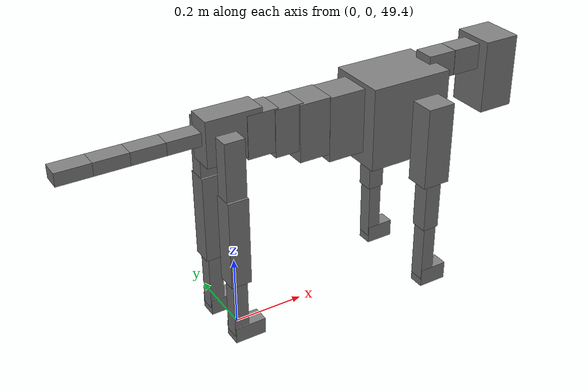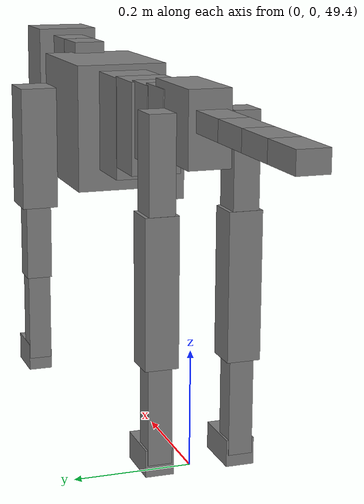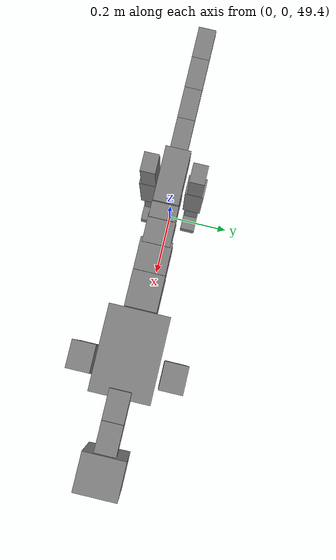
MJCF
<mujoco model="dog">

    <default>
        <joint armature="0.02" stiffness="1" damping="0.2" limited="true"/>
        <geom condim="3" friction="1 0.05 0.05" margin="0.01"/>
        <motor ctrllimited="true" ctrlrange="-1.0 1.0" forcelimited="true" gear="50"/>
    </default>

    <compiler inertiafromgeom="true" angle="radian"/>

    <option timestep="0.016" iterations="50" tolerance="1e-10" solver="Newton" jacobian="dense" cone="pyramidal"/>

    <size nconmax="20000" njmax="60000" nstack="5000000"/>
    <visual>
        <map force="0.1" zfar="30"/>
        <rgba haze="0.15 0.25 0.35 1"/>
        <quality shadowsize="2048"/>
        <global offwidth="800" offheight="800"/>
    </visual>

    <asset>
        <texture type="skybox" builtin="gradient" rgb1="0.3 0.5 0.7" rgb2="0 0 0" width="512" height="512"/>
        <texture name="texplane" type="2d" builtin="checker" rgb1=".2 .3 .4" rgb2=".1 0.15 0.2" width="512" height="512"
                 mark="cross" markrgb=".8 .8 .8"/>
        <texture name="texgeom" type="cube" builtin="flat" mark="cross" width="127" height="1278" rgb1="0.8 0.6 0.4"
                 rgb2="0.8 0.6 0.4" markrgb="1 1 1" random="0.01"/>

        <material name="matplane" reflectance="0.3" texture="texplane" texrepeat="1 1" texuniform="true"/>
        <material name="matgeom" texture="texgeom" texuniform="true" rgba="0.8 0.6 .4 1"/>
    </asset>

    <worldbody>
        <geom name="floor" pos="0 0 0" size="0 0 .25" type="plane" material="matplane" condim="3"/>

        <light directional="false" diffuse=".2 .2 .2" specular="0 0 0" pos="0 0 5" dir="0 0 -1" castshadow="false"/>
        <light mode="targetbodycom" target="torso" directional="false" diffuse=".8 .8 .8" specular="0.3 0.3 0.3"
               pos="0 0 4.0" dir="0 0 -1"/>

        <body name="root" pos="0 0 50">
            <freejoint name="root_1"/>
            <geom type="box" pos="0 0 -0.02" size="0.0774  0.0358  0.063" density="2030"/>

            <body name="spine1" pos="0.054 0 0">
                <joint name="spine1_y" axis="0 1 0" range="0 0.7" limited="true"/>
                <geom type="box" pos="0.02375 0 -0.03" size="0.04375  0.0375  0.05985" density="2030"/>

                <body name="spine2" pos="0.0612 0 0">
                    <joint name="spine2_y" axis="0 1 0" range="-0.15 0.15" limited="true"/>
                    <geom type="box" pos="0.03555  0  -0.04" size="0.04055  0.039  0.06615" density="2030"/>

                    <body name="spine3" pos="0.0730 0 0">
                        <joint name="spine3_y" axis="0 1 0" range="-0.15 0.15" limited="true"/>
                        <geom type="box" pos="0.03555  0  -0.057" size="0.04555  0.0445  0.081" density="2030"/>

                        <body name="spine4" pos="0.0780 0 0">
                            <joint name="spine4_y" axis="0 1 0" range="-0.15 0.15" limited="true"/>
                            <geom type="box" pos="0.05265  0  -0.07" size="0.05265  0.045  0.09135" density="2030"/>

                            <body name="torso" pos="0.1082 0 0">
                                <joint name="torso_y" axis="0 1 0" range="-0.15 0.15" limited="true"/>
                                <geom type="box" pos="0.11925  0  -0.085" size="0.11925  0.085  0.11745"
                                      density="2030"/>

                                <body name="neck1" pos="0.2160  0   0.0180">
                                    <joint name="neck1_y" axis="0 1 0" range="-1.2  -1" limited="true"/>
                                    <geom type="box" pos="0.0423  0  0" size="0.0423  0.03  0.036" density="2325"/>

                                    <body name="neck2" pos="0.0853  0  0">
                                        <joint name="neck2_y" axis="0 1 0" range="0.1  0" limited="true"/>
                                        <geom type="box" pos="0.0423  0  0" size="0.0423  0.03  0.036" density="2325"/>

                                        <body name="head" pos="0.0853  0  0">
                                            <joint name="head_y" axis="0 1 0" range="-0.3  -0.2" limited="true"/>
                                            <geom type="box" pos="0.0531  0  -0.055" size="0.0531  0.06  0.1044"
                                                  density="4030"/>

                                        </body>
                                    </body>
                                </body>

                                <body name="front_shoulder" pos="0.156  0   -0.0480">
                                    <joint name="front_shoulder_y" axis="0 1 0" range="-1 1.5" limited="true"/>
                                    <geom type="box" pos="0 0.13 -0.0896" size="0.0401  0.0343  0.1162" density="1158"/>
                                    <geom type="box" pos="0 -0.13 -0.0896" size="0.0401  0.0343  0.1162"
                                          density="1158"/>

                                    <body name="front_elbow" pos="0  0  -0.1791">
                                        <joint name="front_elbow_y" axis="0 1 0" range="-2 0" limited="true"/>
                                        <geom type="box" pos="0 0.13 -0.0851" size="0.0238  0.0243  0.0851"
                                              density="1081"/>
                                        <geom type="box" pos="0 -0.13 -0.0851" size="0.0238  0.0243  0.0851"
                                              density="1081"/>

                                        <body name="front_wrist" pos="0  0  -0.1702">
                                            <joint name="front_wrist_y" axis="0 1 0" range="-0.2 0" limited="true"/>
                                            <geom type="box" pos="0 0.13 -0.0767" size="0.0195  0.0217  0.0898"
                                                  density="1664"/>
                                            <geom type="box" pos="0 -0.13 -0.0767" size="0.0195  0.0217  0.0898"
                                                  density="1664"/>

                                            <body name="front_finger_end" pos="0  0  -0.1533">
                                                <joint name="front_finger_y" axis="0 1 0" range="-0.4 1"
                                                       limited="true"/>
                                                <geom type="box" pos="0.0223  0.13  -0.0110"
                                                      size="0.0408  0.0223  0.0260" density="1515"/>
                                                <geom type="box" pos="0.0223  -0.13  -0.0110"
                                                      size="0.0408  0.0223  0.0260" density="1515"/>

                                            </body>

                                        </body>
                                    </body>
                                </body>

                            </body>
                        </body>
                    </body>
                </body>
            </body>

            <body name="back_hip" pos="-0.03 0 -0.018">
                <joint name="back_hip_y" axis="0 1 0" range="-1.5 0.3" limited="true"/>
                <geom type="box" pos="0 0.07 -0.0770" size="0.0281  0.0220  0.0998" density="1154"/>
                <geom type="box" pos="0 -0.07 -0.0770" size="0.0281  0.0220  0.0998" density="1154"/>

                <body name="back_knee" pos="0  0  -0.1540">
                    <joint name="back_knee_y" axis="0 1 0" range="0 2.8" limited="true"/>
                    <geom type="box" pos="0 0.07 -0.1094" size="0.0287  0.0283  0.1249" density="1227"/>
                    <geom type="box" pos="0 -0.07 -0.1094" size="0.0287  0.0283  0.1249" density="1227"/>

                    <body name="back_ankle" pos="0  0  -0.2187">
                        <joint name="back_ankle_y" axis="0 1 0" range="-2.2 0" limited="true"/>
                        <geom type="box" pos="0 0.07 -0.0841" size="0.0205  0.0205  0.0953" density="1284"/>
                        <geom type="box" pos="0 -0.07 -0.0841" size="0.0205  0.0205  0.0953" density="1284"/>

                        <body name="back_toe_end" pos="0  0  -0.1681">
                            <joint name="back_toe_y" axis="0 1 0" range="-0.4 1" limited="true"/>
                            <geom type="box" pos="0.0239  0.07  -0.0080" size="0.0439  0.0239  0.0230" density="1515"/>
                            <geom type="box" pos="0.0239  -0.07  -0.0080" size="0.0439  0.0239  0.0230" density="1515"/>

                        </body>
                    </body>
                </body>
            </body>

            <body name="tail1" pos="-0.074 0 -0.006">
                <joint name="tail1_y" axis="0 1 0" range="-0.2 0.2" limited="true"/>
                <geom type="box" pos="-0.0536  0  0" size="0.045  0.025  0.0175" density="1587"/>

                <body name="tail2" pos="-0.09 0 0">
                    <joint name="tail2_y" axis="0 1 0" range="-0.2 0.2" limited="true"/>
                    <geom type="box" pos="-0.0536  0  0" size="0.045  0.025  0.0175" density="1587"/>

                    <body name="tail3" pos="-0.09 0 0">
                        <joint name="tail3_y" axis="0 1 0" range="-0.2 0.2" limited="true"/>
                        <geom type="box" pos="-0.0536  0  0" size="0.045  0.025  0.0175" density="1587"/>

                        <body name="tail4" pos="-0.09 0 0">
                            <joint name="tail4_y" axis="0 1 0" range="-0.2 0.2" limited="true"/>
                            <geom type="box" pos="-0.0536  0  0" size="0.045  0.025  0.0175" density="1587"/>

                        </body>
                    </body>
                </body>
            </body>
        </body>
    </worldbody>

    <actuator>
        <motor joint="spine1_y" forcerange="-150 150     "/>
        <motor joint="spine2_y" forcerange="-150 150     "/>
        <motor joint="spine3_y" forcerange="-150 150     "/>
        <motor joint="spine4_y" forcerange="-150 150     "/>
        <motor joint="torso_y" forcerange="-150 150     "/>
        <motor joint="neck1_y" forcerange="-100 100       "/>
        <motor joint="neck2_y" forcerange="-100 100       "/>
        <motor joint="head_y" forcerange="-150 150       "/>
        <motor joint="front_shoulder_y" forcerange="-178.06 150.71"/>
        <motor joint="front_elbow_y" forcerange="-137.36 139.64"/>
        <motor joint="front_wrist_y" forcerange="-95.70 77.68"/>
        <motor joint="front_finger_y" forcerange="-26.78 51.96"/>
        <motor joint="back_hip_y" forcerange="-261.93 231.41"/>
        <motor joint="back_knee_y" forcerange="-220.41 391.37"/>
        <motor joint="back_angle_y" forcerange="-102.78 124.47"/>
        <motor joint="back_toe_y" forcerange="-29.32 82.11"/>
        <motor joint="tail1_y" forcerange="-50 50     "/>
        <motor joint="tail2_y" forcerange="-50 50     "/>
        <motor joint="tail3_y" forcerange="-50 50     "/>
        <motor joint="tail4_y" forcerange="-50 50     "/>
    </actuator>
</mujoco>
